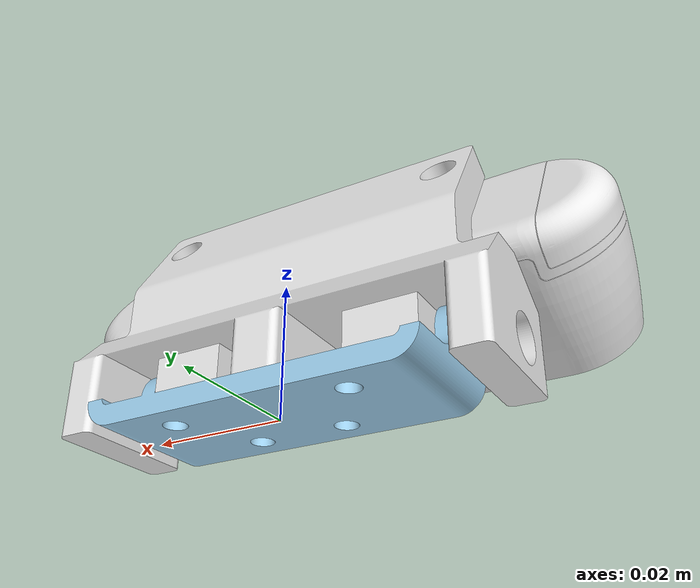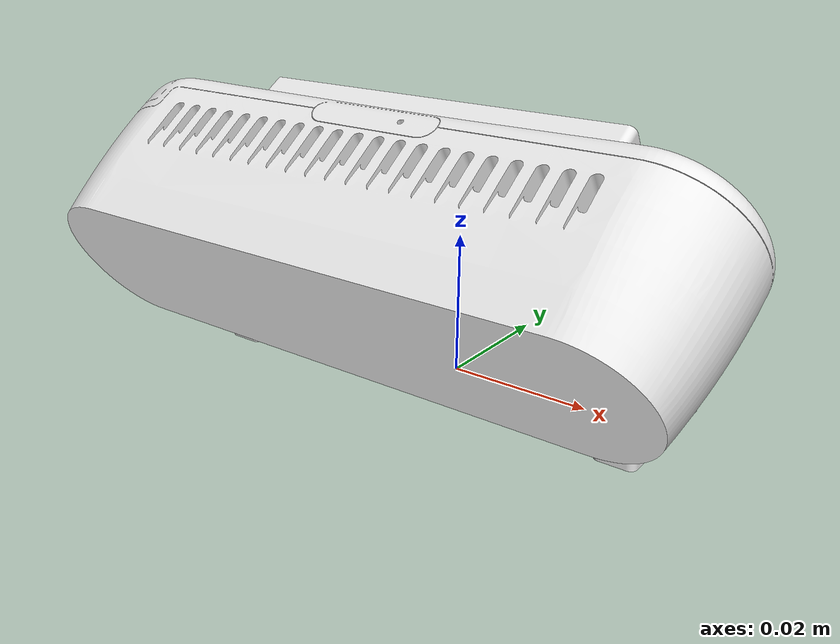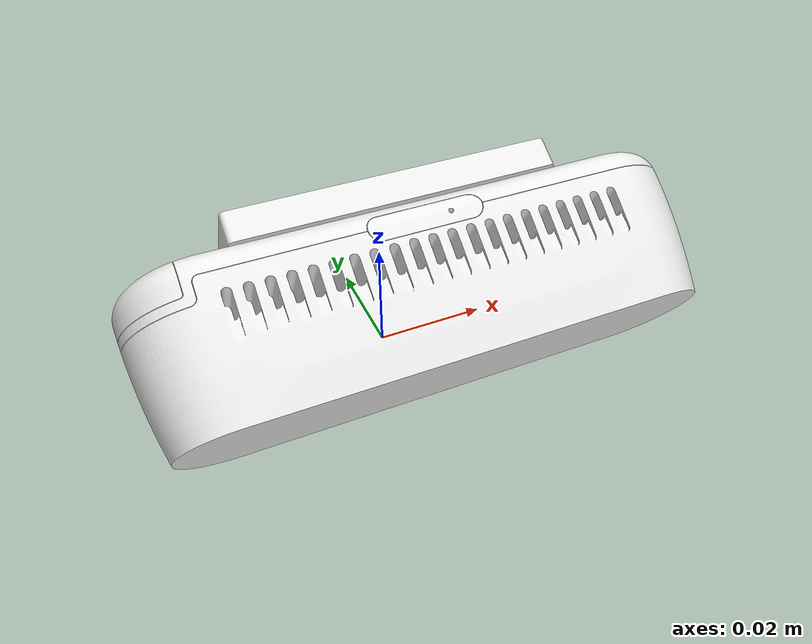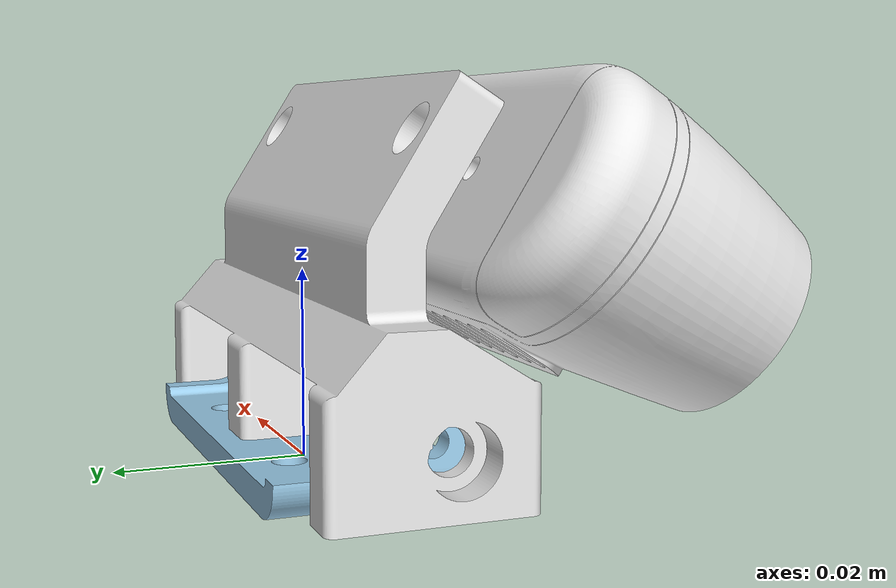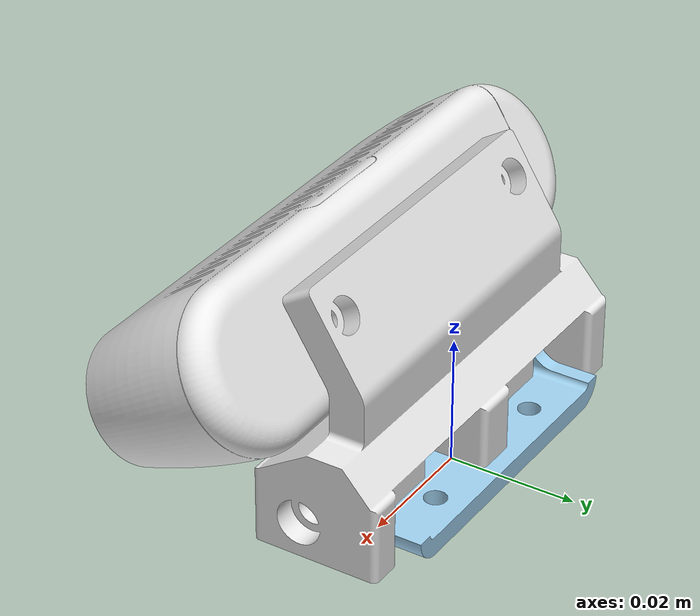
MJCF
<?xml version="1.0" ?>
<!-- Generated using onshape-to-robot -->
<!-- Onshape https://cad.onshape.com/documents/8c8c53c216a1df34f1f97b84/w/141a3b7a0708bfe1c6a4de68/e/5032eb55fc40a52e23c96aec -->
<mujoco model="camera_mount_thick">
  <compiler angle="radian" meshdir="assets" autolimits="true"/>
  <default>
    <default class="camera_mount_thick">
      <joint frictionloss="0.1" armature="0.005"/>
      <position kp="50" dampratio="1"/>
      <default class="visual">
        <geom type="mesh" contype="0" conaffinity="0" group="2"/>
      </default>
      <default class="collision">
        <geom group="3"/>
      </default>
    </default>
  </default>
  <worldbody>
    <!-- Link camera_base -->
    <body name="camera_base" pos="0 0 0" quat="1 0 0 0" childclass="camera_mount_thick">
      <freejoint name="camera_base_freejoint"/>
      <inertial pos="0 0 0" mass="1e-09" fullinertia="1e-09 1e-09 1e-09 0 0 0"/>
      <!-- Part camera_mount_thick -->
      <geom type="mesh" class="visual" pos="-0 -0.002512 0.0335" quat="1 -0 -0 -0" mesh="camera_mount_thick" material="camera_mount_thick_material"/>
      <geom type="mesh" class="collision" pos="-0 -0.002512 0.0335" quat="1 -0 -0 -0" mesh="camera_mount_thick" material="camera_mount_thick_material"/>
      <!-- Part camera_base -->
      <geom type="mesh" class="visual" pos="-0 -1.20037e-05 0" quat="1 -0 -0 0" mesh="camera_base" material="camera_base_material"/>
      <geom type="mesh" class="collision" pos="-0 -1.20037e-05 0" quat="1 -0 -0 0" mesh="camera_base" material="camera_base_material"/>
      <!-- Part camera_d435 -->
      <geom type="mesh" class="visual" pos="-0 -0.0309136 0.0179006" quat="0.48481 0.87462 0 0" mesh="camera_d435" material="camera_d435_material"/>
      <geom type="mesh" class="collision" pos="-0 -0.0309136 0.0179006" quat="0.48481 0.87462 0 0" mesh="camera_d435" material="camera_d435_material"/>
    </body>
  </worldbody>
  <asset>
    <mesh file="camera_d435.stl"/>
    <mesh file="camera_mount_thick.stl"/>
    <mesh file="camera_base.stl"/>
    <material name="camera_mount_thick_material" rgba="0.917647 0.917647 0.917647 1"/>
    <material name="camera_base_material" rgba="0.615686 0.811765 0.929412 1"/>
    <material name="camera_d435_material" rgba="0.917647 0.917647 0.917647 1"/>
  </asset>
  <actuator/>
  <equality/>
</mujoco>
